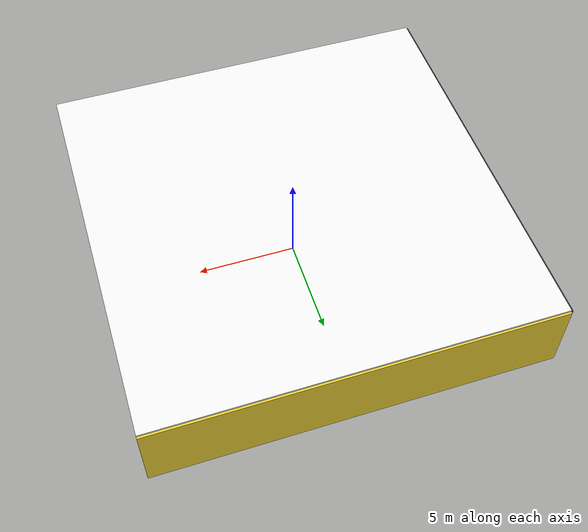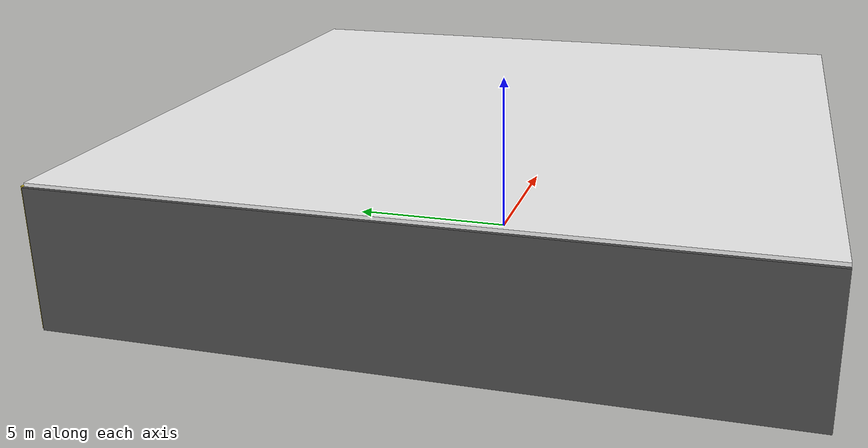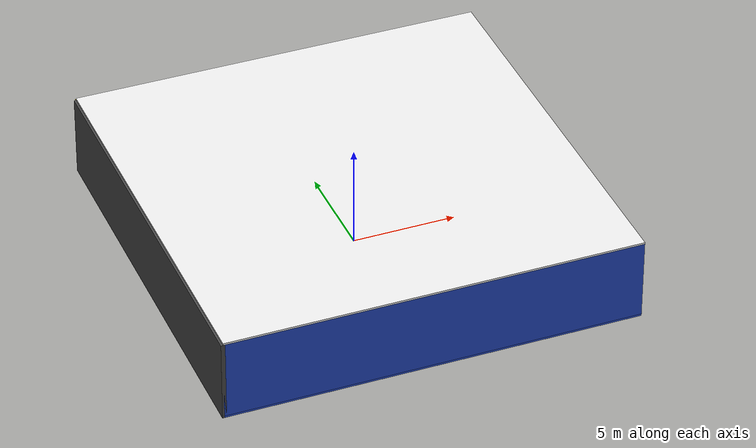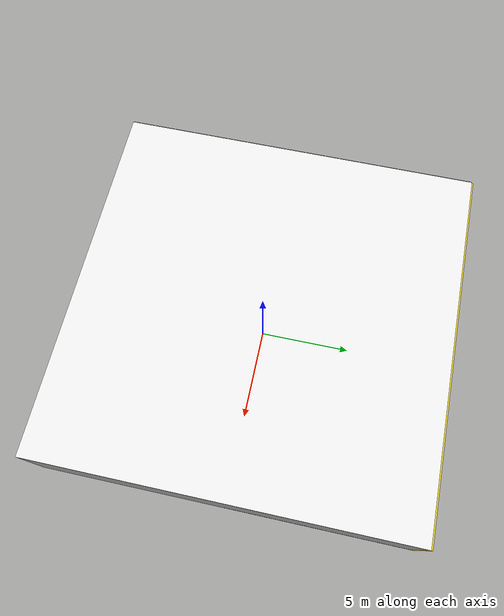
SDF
<sdf version="1.4">
 <world name="default">
  <physics type="ode">
   <max_step_size>0.001</max_step_size>
   <real_time_factor>1</real_time_factor>
   <real_time_update_rate>1000</real_time_update_rate>
   <gravity>0 0 -9.8</gravity>
  </physics>
  <scene><ambient>0.4 0.4 0.4 1</ambient><background>0.7 0.7 0.7 1</background><shadows>1</shadows></scene>
  <model name="Surrounding">
   <static>1</static>
   <link name="Ceiling">
    <collision name="Ceiling_Collision"><geometry><box><size>20 20 0.1</size></box></geometry></collision>
    <visual name="Ceiling_Visual">
     <geometry><box><size>20 20 0.1</size></box></geometry>
     <material>
      <script><uri>file://media/materials/scripts/gazebo.material</uri><name>Gazebo/White</name></script>
     </material>
    </visual>
    <pose>0 0 4.05 0 0 0</pose>
   </link>
   <link name="Wall_South">
    <collision name="Wall_South_Collision">
     <geometry><box><size>20 0 4</size></box></geometry>
     <pose>0 0 2 0 -0 0</pose>
    </collision>
    <visual name="Wall_South_Visual">
     <pose>0 0 2 0 -0 0</pose>
     <geometry><box><size>20 0 4</size></box></geometry>
     <material>
      <script><uri>file://media/materials/scripts/gazebo.material</uri><name>Gazebo/BlueGlow</name></script>
     </material>
    </visual>
    <velocity_decay><linear>0</linear><angular>0</angular></velocity_decay>
    <pose>0 -10 0 0 -0 0</pose>
   </link>
   <link name="Wall_East">
    <collision name="Wall_21_Collision">
     <geometry><box><size>20 0 4</size></box></geometry>
     <pose>0 0 2 0 -0 0</pose>
    </collision>
    <visual name="Wall_21_Visual">
     <pose>0 0 2 0 -0 0</pose>
     <geometry><box><size>20 0 4</size></box></geometry>
     <material>
      <script><uri>file://media/materials/scripts/gazebo.material</uri><name>Gazebo/Grey</name></script>
     </material>
    </visual>
    <velocity_decay><linear>0</linear><angular>0</angular></velocity_decay>
    <pose>10 0 0 0 -0 1.5708</pose>
   </link>
   <link name="Wall_North">
    <collision name="Wall_22_Collision">
     <geometry><box><size>20 0.2 4</size></box></geometry>
     <pose>0 0 2 0 -0 0</pose>
    </collision>
    <visual name="Wall_22_Visual">
     <pose>0 0 2 0 -0 0</pose>
     <geometry><box><size>20 0.2 4</size></box></geometry>
     <material>
      <script><uri>file://media/materials/scripts/gazebo.material</uri><name>Gazebo/ZincYellow</name></script>
     </material>
    </visual>
    <velocity_decay><linear>0</linear><angular>0</angular></velocity_decay>
    <pose>0 10 0 0 -0 0</pose>
   </link>
   <link name="Wall_West">
    <collision name="Wall_23_Collision">
     <geometry><box><size>20 0.2 4</size></box></geometry>
     <pose>0 0 2 0 -0 0</pose>
    </collision>
    <visual name="Wall_23_Visual">
     <pose>0 0 2 0 -0 0</pose>
     <geometry><box><size>20 0.2 4</size></box></geometry>
     <material>
      <script><uri>file://media/materials/scripts/gazebo.material</uri><name>Gazebo/DarkGrey</name></script>
     </material>
    </visual>
    <velocity_decay><linear>0</linear><angular>0</angular></velocity_decay>
    <pose>-10 0 0 0 0 -1.5708</pose>
   </link>
   <link name="Ground_link">
    <collision name="collision">
     <pose>0 0 .05 0 -0 0</pose>
     <geometry><box><size>20 20 0.1</size></box></geometry>
    </collision>
    <visual name="visual">
     <pose>0 0 .05 0 -0 0</pose>
     <geometry><box><size>20 20 0.1</size></box></geometry>
     <material>
      <script><uri>file://media/materials/scripts/gazebo.material</uri><name>Gazebo/BlueGlow</name></script>
     </material>
    </visual>
   </link>
   <static>1</static>
  </model>
  <spherical_coordinates>
   <surface_model>EARTH_WGS84</surface_model>
   <latitude_deg>0</latitude_deg>
   <longitude_deg>0</longitude_deg>
   <elevation>0</elevation>
   <heading_deg>0</heading_deg>
  </spherical_coordinates>
  <light name="lightball_0" type="diffuse">
   <diffuse>0.8 0.8 0.8 1</diffuse>
   <specular>0.2 0.2 0.2 1</specular>
   <attenuation>
    <range>100</range>
    <constant>0.7</constant>
    <linear>0.01</linear>
    <quadratic>0.001</quadratic>
   </attenuation>
   <direction>-0.5 0.1 -0.9</direction>
   <pose>-0.328458801976 -0.5697890932 3.05504692525 0 0 0</pose>
  </light>
  <light name="lightball_1" type="diffuse">
   <diffuse>0.8 0.8 0.8 1</diffuse>
   <specular>0.2 0.2 0.2 1</specular>
   <attenuation>
    <range>100</range>
    <constant>0.7</constant>
    <linear>0.01</linear>
    <quadratic>0.001</quadratic>
   </attenuation>
   <direction>-0.5 0.1 -0.9</direction>
   <pose>-4.17714079033 8.51676112285 2.60008480301 0 0 0</pose>
  </light>
  <include><uri>model://table</uri><pose>-8.16792442605 -7.12275200219 0 0 0 2.91648076001</pose></include>
  <include>
   <uri>model://textured_shapes</uri>
   <pose>-6.6904068268 -4.88954360638 0 0 0 1.67790152514</pose>
  </include>
  <include>
   <uri>model://construction_cone</uri>
   <pose>-4.15010374455 -0.714658009861 0 0 0 1.73998007681</pose>
  </include>
  <include><uri>model://cabinet</uri><pose>-3.97941644402 3.90327866486 0 0 0 0.838204898928</pose></include>
  <include>
   <uri>model://textured_shapes</uri>
   <pose>-0.95877353173 2.58571662731 0 0 0 0.0348560512647</pose>
  </include>
  <include>
   <uri>model://robocup_3Dsim_goal</uri>
   <pose>-0.905743501421 4.62705934956 0 0 0 0.582647244692</pose>
  </include>
  <include><uri>model://cabinet</uri><pose>2.28707045821 -4.42659805671 0 0 0 1.56279653894</pose></include>
  <include>
   <uri>model://robocup_3Dsim_goal</uri>
   <pose>1.39538638316 -2.614767087 0 0 0 2.38900722117</pose>
  </include>
  <include><uri>model://table</uri><pose>4.20352325656 -4.81081702706 0 0 0 1.48771597414</pose></include>
  <include><uri>model://cabinet</uri><pose>4.9027781111 5.55003928458 0 0 0 1.16438475024</pose></include>
  <include>
   <uri>model://textured_shapes</uri>
   <pose>3.83070959142 7.94594770756 0 0 0 1.80264552877</pose>
  </include>
 </world>
</sdf>

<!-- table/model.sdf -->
<sdf version="1.5">
  <model name="table">
    <static>true</static>
    <link name="link">
      <collision name="surface">
        <pose>0 0 1.0 0 0 0</pose>
        <geometry>
          <box>
            <size>1.5 0.8 0.03</size>
          </box>
        </geometry>
        <surface>
          <friction>
            <ode>
              <mu>0.6</mu>
              <mu2>0.6</mu2>
            </ode>
          </friction>
        </surface>
      </collision>
      <visual name="visual1">
        <pose>0 0 1.0 0 0 0</pose>
        <geometry>
          <box>
            <size>1.5 0.8 0.03</size>
          </box>
        </geometry>
        <material>
          <script>
            <uri>model://media/materials/scripts/gazebo.material</uri>
            <name>Gazebo/Wood</name>
          </script>
        </material>
      </visual>
      <collision name="front_left_leg">
        <pose>0.68 0.38 0.5 0 0 0</pose>
        <geometry>
          <cylinder>
            <radius>0.02</radius>
            <length>1.0</length>
          </cylinder>
        </geometry>
      </collision>
      <visual name="front_left_leg">
        <pose>0.68 0.38 0.5 0 0 0</pose>
        <geometry>
          <cylinder>
            <radius>0.02</radius>
            <length>1.0</length>
          </cylinder>
        </geometry>
        <material>
          <script>
            <uri>model://media/materials/scripts/gazebo.material</uri>
            <name>Gazebo/Grey</name>
          </script>
        </material>
      </visual>
      <collision name="front_right_leg">
        <pose>0.68 -0.38 0.5 0 0 0</pose>
        <geometry>
          <cylinder>
            <radius>0.02</radius>
            <length>1.0</length>
          </cylinder>
        </geometry>
      </collision>
      <visual name="front_right_leg">
        <pose>0.68 -0.38 0.5 0 0 0</pose>
        <geometry>
          <cylinder>
            <radius>0.02</radius>
            <length>1.0</length>
          </cylinder>
        </geometry>
        <material>
          <script>
            <uri>model://media/materials/scripts/gazebo.material</uri>
            <name>Gazebo/Grey</name>
          </script>
        </material>
      </visual>
      <collision name="back_right_leg">
        <pose>-0.68 -0.38 0.5 0 0 0</pose>
        <geometry>
          <cylinder>
            <radius>0.02</radius>
            <length>1.0</length>
          </cylinder>
        </geometry>
      </collision>
      <visual name="back_right_leg">
        <pose>-0.68 -0.38 0.5 0 0 0</pose>
        <geometry>
          <cylinder>
            <radius>0.02</radius>
            <length>1.0</length>
          </cylinder>
        </geometry>
        <material>
          <script>
            <uri>model://media/materials/scripts/gazebo.material</uri>
            <name>Gazebo/Grey</name>
          </script>
        </material>
      </visual>
      <collision name="back_left_leg">
        <pose>-0.68 0.38 0.5 0 0 0</pose>
        <geometry>
          <cylinder>
            <radius>0.02</radius>
            <length>1.0</length>
          </cylinder>
        </geometry>
      </collision>
      <visual name="back_left_leg">
        <pose>-0.68 0.38 0.5 0 0 0</pose>
        <geometry>
          <cylinder>
            <radius>0.02</radius>
            <length>1.0</length>
          </cylinder>
        </geometry>
        <material>
          <script>
            <uri>model://media/materials/scripts/gazebo.material</uri>
            <name>Gazebo/Grey</name>
          </script>
        </material>
      </visual>
    </link>
  </model>
</sdf>

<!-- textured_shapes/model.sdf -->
<sdf version="1.6">
  <model name="textured_shapes">
    <pose>0 0 0.5 0 0 0</pose>
    <link name="box">
      <pose>0 -1.5 0 0 0 0</pose>
      <collision name="collision">
        <geometry>
          <box>
            <size>1 1 1</size>
          </box>
        </geometry>
      </collision>
      <visual name="visual">
        <geometry>
          <box>
            <size>1 1 1</size>
          </box>
        </geometry>
        <material>
          <script>
            <uri>model://../model_source/models/textured_shapes/materials/scripts</uri>
            <uri>model://../model_source/models/textured_shapes/materials/textures</uri>
            <name>TexturedShape/Squares</name>
          </script>
        </material>
      </visual>
    </link>
    <link name="sphere">
      <collision name="collision">
        <geometry>
          <sphere>
            <radius>0.5</radius>
          </sphere>
        </geometry>
      </collision>
      <visual name="visual">
        <geometry>
          <sphere>
            <radius>0.5</radius>
          </sphere>
        </geometry>
        <material>
          <script>
            <uri>model://../model_source/models/textured_shapes/materials/scripts</uri>
            <uri>model://../model_source/models/textured_shapes/materials/textures</uri>
            <name>TexturedShape/Squares</name>
          </script>
        </material>
      </visual>
    </link>
    <link name="cylinder">
      <pose>0 1.5 0 0 0 0</pose>
      <collision name="collision">
        <geometry>
          <cylinder>
            <radius>0.5</radius>
            <length>1</length>
          </cylinder>
        </geometry>
      </collision>
      <visual name="visual">
        <geometry>
          <cylinder>
            <radius>0.5</radius>
            <length>1</length>
          </cylinder>
        </geometry>
        <material>
          <script>
            <uri>model://../model_source/models/textured_shapes/materials/scripts</uri>
            <uri>model://../model_source/models/textured_shapes/materials/textures</uri>
            <name>TexturedShape/Squares</name>
          </script>
        </material>
      </visual>
    </link>
  </model>
</sdf>

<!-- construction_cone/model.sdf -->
<sdf version="1.5">
  <model name="Construction Cone">
    <link name="link">
      <collision name="collision">
        <geometry>
          <mesh>
            <scale>10 10 10</scale>
            <uri>file://isr-testbed/construction_cone/meshes/construction_cone.dae</uri>
          </mesh>
        </geometry>
      </collision>
      <visual name="visual">
        <geometry>
          <mesh>
            <scale>10 10 10</scale>
            <uri>file://isr-testbed/construction_cone/meshes/construction_cone.dae</uri>
          </mesh>
        </geometry>
      </visual>
    </link>
  </model>
</sdf>

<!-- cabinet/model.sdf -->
<sdf version="1.5">
  <model name="cabinet">
    <static>true</static>
    <link name="cabinet_bottom_plate">
      <inertial>
        <pose>0 0 -1 0 0 0</pose>
        <inertia>
          <ixx>2.050000</ixx>
          <ixy>0</ixy>
          <ixz>0</ixz>
          <iyy>2.050000</iyy>
          <iyz>0</iyz>
          <izz>2.050000</izz>
        </inertia>
        <mass>25.000000</mass>
      </inertial>
      <collision name="cabinet_bottom_plate_geom">
        <pose>0 0 0.010000 0 0 0</pose>
        <geometry>
          <box>
            <size>0.450000 0.450000 0.020000</size>
          </box>
        </geometry>
      </collision>
      <visual name="cabinet_bottom_plate_geom_visual">
        <pose>0 0 0.010000 0 0 0</pose>
        <geometry>
          <box>
            <size>0.450000 0.450000 0.020000</size>
          </box>
        </geometry>
        <material>
          <script>
            <uri>model://media/materials/scripts/gazebo.material</uri>
            <name>Gazebo/Wood</name>
          </script>
        </material>
      </visual>
      <collision name="cabinet_bottom_plate_geom_cabinet_back_plate">
        <pose>0.235000 0 0.510000 0 0 0</pose>
        <geometry>
          <box>
            <size>0.020000 0.450000 1.020000</size>
          </box>
        </geometry>
      </collision>
      <visual name="cabinet_bottom_plate_geom_cabinet_back_plate_visual">
        <pose>0.235000 0 0.510000 0 0 0</pose>
        <geometry>
          <box>
            <size>0.020000 0.450000 1.020000</size>
          </box>
        </geometry>
        <material>
          <script>
            <uri>model://media/materials/scripts/gazebo.material</uri>
            <name>Gazebo/Wood</name>
          </script>
        </material>
      </visual>
      <collision name="cabinet_bottom_plate_geom_cabinet_left_plate">
        <pose>0 0.235000 0.510000 0 0 0</pose>
        <geometry>
          <box>
            <size>0.450000 0.020000 1.020000</size>
          </box>
        </geometry>
      </collision>
      <visual name="cabinet_bottom_plate_geom_cabinet_left_plate_visual">
        <pose>0 0.235000 0.510000 0 0 0</pose>
        <geometry>
          <box>
            <size>0.450000 0.020000 1.020000</size>
          </box>
        </geometry>
        <material>
          <script>
            <uri>model://media/materials/scripts/gazebo.material</uri>
            <name>Gazebo/Wood</name>
          </script>
        </material>
      </visual>
      <collision name="cabinet_bottom_plate_geom_cabinet_middle_plate">
        <pose>0 0 0.510000 0 0 0</pose>
        <geometry>
          <box>
            <size>0.450000 0.450000 0.020000</size>
          </box>
        </geometry>
      </collision>
      <visual name="cabinet_bottom_plate_geom_cabinet_middle_plate_visual">
        <pose>0 0 0.510000 0 0 0</pose>
        <geometry>
          <box>
            <size>0.450000 0.450000 0.020000</size>
          </box>
        </geometry>
        <material>
          <script>
            <uri>model://media/materials/scripts/gazebo.material</uri>
            <name>Gazebo/Wood</name>
          </script>
        </material>
      </visual>
      <collision name="cabinet_bottom_plate_geom_cabinet_right_plate">
        <pose>0 -0.235000 0.510000 0 0 0</pose>
        <geometry>
          <box>
            <size>0.450000 0.020000 1.020000</size>
          </box>
        </geometry>
      </collision>
      <visual name="cabinet_bottom_plate_geom_cabinet_right_plate_visual">
        <pose>0 -0.235000 0.510000 0 0 0</pose>
        <geometry>
          <box>
            <size>0.450000 0.020000 1.020000</size>
          </box>
        </geometry>
        <material>
          <script>
            <uri>model://media/materials/scripts/gazebo.material</uri>
            <name>Gazebo/Wood</name>
          </script>
        </material>
      </visual>
      <collision name="cabinet_bottom_plate_geom_cabinet_top_plate">
        <pose>0 0 1.010000 0 0 0</pose>
        <geometry>
          <box>
            <size>0.450000 0.450000 0.020000</size>
          </box>
        </geometry>
      </collision>
      <visual name="cabinet_bottom_plate_geom_cabinet_top_plate_visual">
        <pose>0 0 1.010000 0 0 0</pose>
        <geometry>
          <box>
            <size>0.450000 0.450000 0.020000</size>
          </box>
        </geometry>
        <material>
          <script>
            <uri>model://media/materials/scripts/gazebo.material</uri>
            <name>Gazebo/Wood</name>
          </script>
        </material>
      </visual>
    </link>
  </model>
</sdf>

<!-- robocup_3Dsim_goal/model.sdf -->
<sdf version="1.5">
  <model name="robocup_3d_goal">
    <static>true</static>
    <link name="left_post">
      <pose>0 1.05 0.45 0 0 0</pose>
      <collision name="collision">
        <geometry>
          <cylinder>
            <radius>0.05</radius>
            <length>0.9</length>
          </cylinder>
        </geometry>
      </collision>
      <visual name="visual">
        <geometry>
          <cylinder>
            <radius>0.05</radius>
            <length>0.9</length>
          </cylinder>
        </geometry>
        <material>
          <script>
            <uri>file://media/materials/scripts/gazebo.material</uri>
            <name>Gazebo/ZincYellow</name>
          </script>
        </material>
      </visual>
    </link>
    <link name="left_support_horiz_lower">
      <pose>0.30 1.05 0.01 0 0 0</pose>
      <collision name="collision">
        <geometry>
          <box>
            <size>0.50 0.02 0.02</size>
          </box>
        </geometry>
      </collision>
      <visual name="visual">
        <geometry>
          <box>
            <size>0.50 0.02 0.02</size>
          </box>
        </geometry>
        <material>
          <script>
            <uri>file://media/materials/scripts/gazebo.material</uri>
            <name>Gazebo/White</name>
          </script>
        </material>
      </visual>
    </link>
    <link name="left_support_horiz_upper">
      <pose>0.30 1.05 0.79 0 0 0</pose>
      <collision name="collision">
        <geometry>
          <box>
            <size>0.50 0.02 0.02</size>
          </box>
        </geometry>
      </collision>
      <visual name="visual">
        <geometry>
          <box>
            <size>0.50 0.02 0.02</size>
          </box>
        </geometry>
        <material>
          <script>
            <uri>file://media/materials/scripts/gazebo.material</uri>
            <name>Gazebo/White</name>
          </script>
        </material>
      </visual>
    </link>
    <link name="left_support_vertical">
      <pose>0.56 1.05 0.4 0 1.5708 0</pose>
      <collision name="collision">
        <geometry>
          <box>
            <size>0.80 0.02 0.02</size>
          </box>
        </geometry>
      </collision>
      <visual name="visual">
        <geometry>
          <box>
            <size>0.80 0.02 0.02</size>
          </box>
        </geometry>
        <material>
          <script>
            <uri>file://media/materials/scripts/gazebo.material</uri>
            <name>Gazebo/White</name>
          </script>
        </material>
      </visual>
    </link>
    <link name="right_support_horiz_lower">
      <pose>0.30 -1.05 0.01 0 0 0</pose>
      <collision name="collision">
        <geometry>
          <box>
            <size>0.50 0.02 0.02</size>
          </box>
        </geometry>
      </collision>
      <visual name="visual">
        <geometry>
          <box>
            <size>0.50 0.02 0.02</size>
          </box>
        </geometry>
        <material>
          <script>
            <uri>file://media/materials/scripts/gazebo.material</uri>
            <name>Gazebo/White</name>
          </script>
        </material>
      </visual>
    </link>
    <link name="right_support_horiz_upper">
      <pose>0.30 -1.05 0.79 0 0 0</pose>
      <collision name="collision">
        <geometry>
          <box>
            <size>0.50 0.02 0.02</size>
          </box>
        </geometry>
      </collision>
      <visual name="visual">
        <geometry>
          <box>
            <size>0.50 0.02 0.02</size>
          </box>
        </geometry>
        <material>
          <script>
            <uri>file://media/materials/scripts/gazebo.material</uri>
            <name>Gazebo/White</name>
          </script>
        </material>
      </visual>
    </link>
    <link name="right_support_vertical">
      <pose>0.56 -1.05 0.4 0 1.5708 0</pose>
      <collision name="collision">
        <geometry>
          <box>
            <size>0.80 0.02 0.02</size>
          </box>
        </geometry>
      </collision>
      <visual name="visual">
        <geometry>
          <box>
            <size>0.80 0.02 0.02</size>
          </box>
        </geometry>
        <material>
          <script>
            <uri>file://media/materials/scripts/gazebo.material</uri>
            <name>Gazebo/White</name>
          </script>
        </material>
      </visual>
    </link>
    <link name="center_support_horiz_lower">
      <pose>0.56 0 0.01 0 1.5708 0</pose>
      <collision name="collision">
        <geometry>
          <box>
            <size>0.02 2.08 0.02</size>
          </box>
        </geometry>
      </collision>
      <visual name="visual">
        <geometry>
          <box>
            <size>0.02 2.08 0.02</size>
          </box>
        </geometry>
        <material>
          <script>
            <uri>file://media/materials/scripts/gazebo.material</uri>
            <name>Gazebo/White</name>
          </script>
        </material>
      </visual>
    </link>
    <link name="center_support_horiz_upper">
      <pose>0.56 0 0.79 0 1.5708 0</pose>
      <collision name="collision">
        <geometry>
          <box>
            <size>0.02 2.08 0.02</size>
          </box>
        </geometry>
      </collision>
      <visual name="visual">
        <geometry>
          <box>
            <size>0.02 2.08 0.02</size>
          </box>
        </geometry>
        <material>
          <script>
            <uri>file://media/materials/scripts/gazebo.material</uri>
            <name>Gazebo/White</name>
          </script>
        </material>
      </visual>
    </link>
    <link name="right_post">
      <pose>0 -1.05 0.45 0 0 0</pose>
      <collision name="collision">
        <geometry>
          <cylinder>
            <radius>0.05</radius>
            <length>0.9</length>
          </cylinder>
        </geometry>
      </collision>
      <visual name="visual">
        <geometry>
          <cylinder>
            <radius>0.05</radius>
            <length>0.9</length>
          </cylinder>
        </geometry>
        <material>
          <script>
            <uri>file://media/materials/scripts/gazebo.material</uri>
            <name>Gazebo/ZincYellow</name>
          </script>
        </material>
      </visual>
    </link>
    <link name="crossbar">
      <pose>0 0 0.85 1.57 1.57 0</pose>
      <collision name="collision">
        <geometry>
          <cylinder>
            <radius>0.05</radius>
            <length>2.0</length>
          </cylinder>
        </geometry>
      </collision>
      <visual name="visual">
        <geometry>
          <cylinder>
            <radius>0.05</radius>
            <length>2.0</length>
          </cylinder>
        </geometry>
        <material>
          <script>
            <uri>file://media/materials/scripts/gazebo.material</uri>
            <name>Gazebo/ZincYellow</name>
          </script>
        </material>
      </visual>
    </link>
    <link name="center_net">
      <pose>0.56 0 0.40 0 0 0</pose>
      <collision name="collision">
        <geometry>
          <box>
            <size>0.01 2.1 0.80</size>
          </box>
        </geometry>
      </collision>
      <visual name="visual">
        <geometry>
          <box>
            <size>0.01 2.1 0.80</size>
          </box>
        </geometry>
        <material>
          <script>
            <uri>model://../model_source/models/robocup09_spl_field/materials/scripts/</uri>
            <uri>model://../model_source/models/robocup09_spl_field/materials/textures/</uri>
            <name>RoboCup/Net</name>
          </script>
        </material>
      </visual>
    </link>
    <link name="left_net">
      <pose>0.30 1.05 0.40 0 0 0</pose>
      <collision name="collision">
        <geometry>
          <box>
            <size>0.50 0.01 0.76</size>
          </box>
        </geometry>
      </collision>
      <visual name="visual">
        <geometry>
          <box>
            <size>0.50 0.01 0.76</size>
          </box>
        </geometry>
        <material>
          <script>
            <uri>model://../model_source/models/robocup09_spl_field/materials/scripts/</uri>
            <uri>model://../model_source/models/robocup09_spl_field/materials/textures/</uri>
            <name>RoboCup/Net</name>
          </script>
        </material>
      </visual>
    </link>
    <link name="right_net">
      <pose>0.30 -1.05 0.40 0 0 0</pose>
      <collision name="collision">
        <geometry>
          <box>
            <size>0.50 0.01 0.76</size>
          </box>
        </geometry>
      </collision>
      <visual name="visual">
        <geometry>
          <box>
            <size>0.50 0.01 0.76</size>
          </box>
        </geometry>
        <material>
          <script>
            <uri>model://../model_source/models/robocup09_spl_field/materials/scripts/</uri>
            <uri>model://../model_source/models/robocup09_spl_field/materials/textures/</uri>
            <name>RoboCup/Net</name>
          </script>
        </material>
      </visual>
    </link>
  </model>
</sdf>
